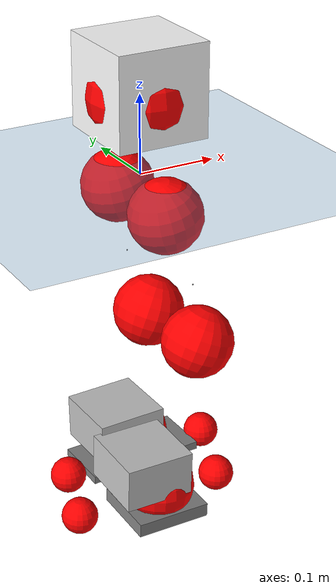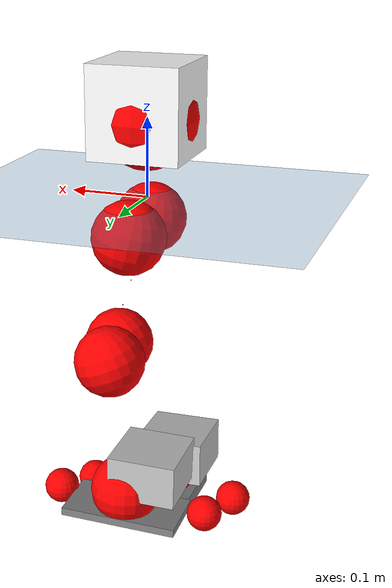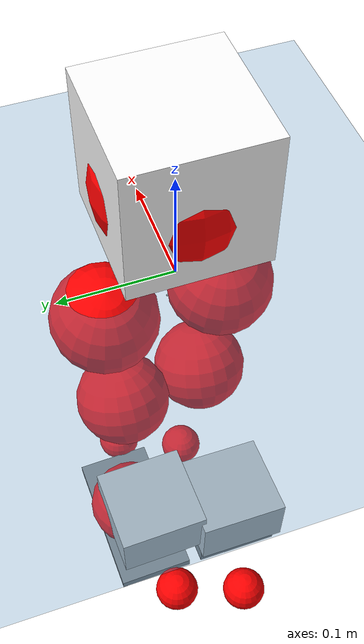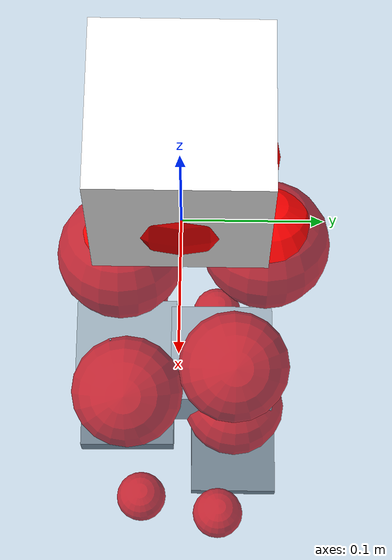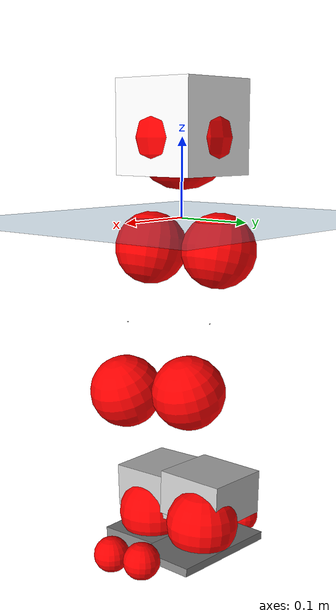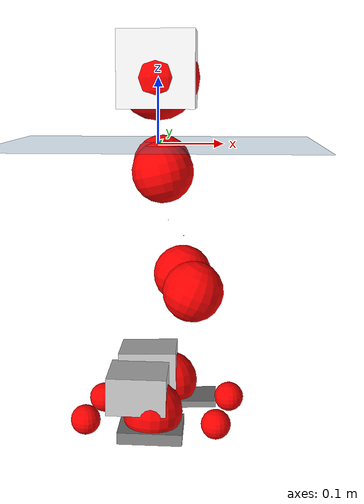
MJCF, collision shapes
<mujoco model="pi_12dof_release_v1">
  <compiler angle="radian" assetdir="assets" balanceinertia="true" inertiafromgeom="false"/>

  <option timestep="0.005" density="1.2" viscosity="2e-05"/>

  <size nkey="1"/>

  <visual>
    <quality shadowsize="8192"/>
    <map shadowclip="0.5"/>
  </visual>

  <default>
    <default class="/">
      <joint armature="0.01" damping="0.01" frictionloss="0.01"/>
      <geom contype="0" conaffinity="0" group="1" solref="-1000 -80"/>
      <site size="0.01 0.005 0.005" group="5"/>
      <general forcelimited="true" biastype="affine" gainprm="20" biasprm="0 -20 -0.5"/>
      <default class="foot">
        <geom size="0.0845 0.036 0.005" type="box" condim="6" group="4" priority="1" friction="0.9 0.2 0.2" solimp="0.015 1 0.005"/>
      </default>
      <default class="reward_collision_sphere">
        <geom group="5" rgba="1 0 0 1"/>
      </default>
    </default>
  </default>

  <asset>
    <texture type="skybox" colorspace="auto" name="//unnamed_texture_0" builtin="gradient" rgb1="0.95 0.95 0.95" rgb2="0.95 0.95 0.95" width="100" height="600"/>
    <texture type="2d" colorspace="auto" name="texplane" builtin="checker" rgb1="0.345 0.575 0.748" rgb2="0.345 0.575 0.748" markrgb="1 1 1" width="512" height="512"/>
    <material name="MatPlane" class="/" texture="texplane" texuniform="true" texrepeat="2 2" specular="0.9"/>
    <mesh name="baselink_1" class="/" file="baselink_1.STL"/>
    <mesh name="r_hip_pitch_link" class="/" file="r_hip_pitch_link.STL"/>
    <mesh name="r_hip_roll_link" class="/" file="r_hip_roll_link.STL"/>
    <mesh name="r_thigh_link" class="/" file="r_thigh_link.STL"/>
    <mesh name="r_calf_link" class="/" file="r_calf_link.STL"/>
    <mesh name="r_ankle_pitch_link" class="/" file="r_ankle_pitch_link.STL"/>
    <mesh name="r_ankle_roll_link" class="/" file="r_ankle_roll_link.STL"/>
    <mesh name="l_hip_pitch_link" class="/" file="l_hip_pitch_link.STL"/>
    <mesh name="l_hip_roll_link" class="/" file="l_hip_roll_link.STL"/>
    <mesh name="l_thigh_link" class="/" file="l_thigh_link.STL"/>
    <mesh name="l_calf_link" class="/" file="l_calf_link.STL"/>
    <mesh name="l_ankle_pitch_link" class="/" file="l_ankle_pitch_link.STL"/>
    <mesh name="l_ankle_roll_link" class="/" file="l_ankle_roll_link.STL"/>
  </asset>

  <worldbody>
    <geom name="floor" class="/" size="100 100 0.125" type="plane" group="0" material="MatPlane"/>
    <light name="toplight_shadow" class="/" pos="0 0 5" dir="0.0990148 0.0990148 -0.990148" type="directional" ambient="0.04 0.04 0.04" diffuse="0.55 0.55 0.55" specular="0.12 0.12 0.12"/>
    <light name="toplight_fill" class="/" pos="0 0 5" dir="0.0990148 0.0990148 -0.990148" type="directional" castshadow="false" ambient="0.04 0.04 0.04" diffuse="0.3 0.3 0.3" specular="0.08 0.08 0.08"/>
    <body name="trunk" pos="-0.000245169 0.000598042 0.0119663" quat="0.999999 -0.000844809 -0.000256187 0.000496482">
      <inertial pos="0.00074331 -0.0158573 0.0372057" quat="0.696657 0.00905199 0.011662 0.717252" mass="3.54917" diaginertia="0.0706715 0.00210236 0.0142583"/>
      <joint name="//unnamed_joint_0" type="free"/>
      <geom name="//unnamed_geom_1" class="/" type="mesh" density="0" rgba="1 1 1 1" mesh="baselink_1"/>
      <geom name="//unnamed_geom_2" class="/" size="0.0582479 0.0582479 0.0582479" pos="0 0 0.099602" type="box" rgba="1 1 1 1"/>
      <geom name="//unnamed_geom_3" class="reward_collision_sphere" size="0.0640727" pos="0 0 0.0871518"/>
      <site name="imu" class="/" pos="-0.0369609 0.0496938 -0.0388407" size="0.0116496"/>
      <camera name="track" class="/" pos="0 -1.475 0" quat="0.707107 0.707107 0 0" mode="trackcom"/>
      <camera name="ego_camera" class="/" pos="0.113426 0 0.224105" quat="-0.5 -0.5 0.5 0.5"/>
      <body name="r_hip_pitch_link" pos="0.00394867 -0.00631503 -0.0443592" quat="0.992328 0.00131518 -0.123602 -0.00259364">
        <inertial pos="0.0155376 -0.0386628 0.00930296" quat="-0.0321619 0.712273 -0.0427133 0.699863" mass="0.682828" diaginertia="0.000938075 2.59864e-05 0.000234832"/>
        <joint name="r_hip_pitch_joint" class="/" pos="0 0 0" axis="0.000103995 -0.996923 -0.078391" range="-1.64997 1.48007" armature="0.0175578" damping="0.0564823" frictionloss="0.0189474"/>
        <geom name="//unnamed_geom_4" class="/" type="mesh" density="0" rgba="0.75294 0.75294 0.75294 1" mesh="r_hip_pitch_link"/>
        <geom name="//unnamed_geom_5" class="/" size="0.000582479 0.000582479 0.000582479" type="box" rgba="0.75294 0.75294 0.75294 1"/>
        <body name="r_hip_roll_link" pos="0.00443659 -0.0379198 -0.00856006" quat="1 2.01e-05 5.28931e-05 -3.58778e-05">
          <inertial pos="2.07221e-05 0.00107766 -0.0659217" quat="0.700813 -0.0836164 -0.074911 0.704455" mass="0.671639" diaginertia="0.00252083 6.01622e-05 0.000548242"/>
          <joint name="r_hip_roll_joint" class="/" pos="0 0 0" axis="-0.998033 0.0618648 0.010141" stiffness="0.0412849" range="-0.0974853 0.560408" armature="0.014288" damping="0.0897802" frictionloss="0.00572649"/>
          <geom name="//unnamed_geom_6" class="/" type="mesh" density="0" rgba="0.75294 0.75294 0.75294 1" mesh="r_hip_roll_link"/>
          <geom name="//unnamed_geom_7" class="/" size="0.000582479 0.000582479 0.000582479" type="box" rgba="0.75294 0.75294 0.75294 1"/>
          <geom name="//unnamed_geom_8" class="reward_collision_sphere" size="0.0465983"/>
          <body name="r_thigh_link" pos="0.00840542 -0.0117792 -0.0988966" quat="0.999971 0.00604967 0.00453523 0.00105771">
            <inertial pos="0.00295574 0.00154725 -0.0589333" quat="0.737437 0.675415 0.000127122 -0.00122656" mass="0.225497" diaginertia="0.000960891 2.11866e-05 0.000192837"/>
            <joint name="r_thigh_joint" class="/" pos="0 0 0" axis="-0.00726605 -0.00158584 -0.999972" range="-0.304773 0.829799" armature="0.00373718" damping="0" frictionloss="0.0108346"/>
            <geom name="//unnamed_geom_9" class="/" type="mesh" density="0" rgba="0.75294 0.75294 0.75294 1" mesh="r_thigh_link"/>
            <geom name="//unnamed_geom_10" class="/" size="0.000582479 0.000582479 0.000582479" type="box" rgba="0.75294 0.75294 0.75294 1"/>
            <body name="r_calf_link" pos="-0.00722449 0.00841778 -0.0887325" quat="0.948206 0.00478343 0.317591 0.00435556">
              <inertial pos="0.000365775 -0.0051831 -0.0820782" quat="0.999968 -0.00687894 0.00108383 0.00402942" mass="1.39365" diaginertia="0.0342039 0.00100911 0.000503503"/>
              <joint name="r_calf_joint" class="/" pos="0 0 0" axis="-0.0152838 -0.996318 -0.0843588" range="-1.47947 0.647088" armature="0.0124566" damping="0.0173188" frictionloss="0.0154625"/>
              <geom name="//unnamed_geom_11" class="/" type="mesh" density="0" rgba="0.75294 0.75294 0.75294 1" mesh="r_calf_link"/>
              <geom name="//unnamed_geom_12" class="/" size="0.000582479 0.000582479 0.000582479" type="box" rgba="0.75294 0.75294 0.75294 1"/>
              <geom name="//unnamed_geom_13" class="reward_collision_sphere" size="0.0465983"/>
              <body name="r_ankle_pitch_link" pos="-0.016627 -0.0100886 -0.172357" quat="0.980593 0.00104418 -0.196046 -0.00165061">
                <inertial pos="0.00531181 0.00675289 0.000239346" quat="0.00511183 0.706124 -0.00217356 0.708067" mass="0.244753" diaginertia="0.00228446 4.22058e-05 0.000264267"/>
                <joint name="r_ankle_pitch_joint" class="/" pos="0 0 0" axis="0.0224294 -0.998967 -0.0395173" stiffness="0.0420269" range="-1.07625 0.330159" armature="0.010365" damping="0" frictionloss="0.0035518"/>
                <geom name="//unnamed_geom_14" class="/" type="mesh" density="0" rgba="0.75294 0.75294 0.75294 1" mesh="r_ankle_pitch_link"/>
                <geom name="//unnamed_geom_15" class="/" size="0.0454334 0.0465983 0.0291239" type="box" rgba="0.75294 0.75294 0.75294 1"/>
                <body name="r_ankle_roll_link" pos="0.0982398 -0.003364 -0.00955456" quat="0.999997 -0.00196811 0.00133948 0.00090055">
                  <inertial pos="-0.0281101 0.00587112 -0.0344332" quat="0.585944 0.422085 0.417031 0.551905" mass="0.992639" diaginertia="0.00773228 0.00022865 0.000860573"/>
                  <joint name="r_ankle_roll_joint" class="/" pos="0 0 0" axis="-0.999978 0.000898631 0.00654572" range="-0.230285 0.248058" armature="0.0121579" damping="0" frictionloss="0.001839"/>
                  <geom name="//unnamed_geom_16" class="/" type="mesh" density="0" rgba="0.75294 0.75294 0.75294 1" mesh="r_ankle_roll_link"/>
                  <geom name="//unnamed_geom_17" class="/" type="mesh" rgba="0.75294 0.75294 0.75294 1" mesh="r_ankle_roll_link"/>
                  <geom name="right_foot" class="foot" size="0.0493279 0.0449011 0.00899428" pos="-0.0771296 0 -0.0547811"/>
                  <geom name="//unnamed_geom_19" class="reward_collision_sphere" size="0.0465983" pos="-0.0756173 0 -0.0249005"/>
                  <geom name="//unnamed_geom_20" class="reward_collision_sphere" size="0.0232992" pos="0.0226852 0.01475 -0.049801"/>
                  <geom name="//unnamed_geom_21" class="reward_collision_sphere" size="0.0232992" pos="-0.181481 0.01475 -0.049801"/>
                  <site name="right_foot" class="foot" pos="-0.0771296 0 -0.0547811" size="0.0116496"/>
                </body>
              </body>
            </body>
          </body>
        </body>
      </body>
      <body name="l_hip_pitch_link" pos="0.00550282 0.00498195 -0.0451417" quat="0.992219 -0.000729473 -0.124492 -0.00175141">
        <inertial pos="0.010593 0.0540035 -0.00508403" quat="-0.0527528 0.651796 -0.0189508 0.75632" mass="0.755627" diaginertia="0.000928976 1.98491e-05 0.000336215"/>
        <joint name="l_hip_pitch_joint" class="/" pos="0 0 0" axis="-0.00182758 0.999996 0.00221983" stiffness="0.00477946" range="-1.50725 2.05337" armature="0.00495215" damping="0" frictionloss="0.0196172"/>
        <geom name="//unnamed_geom_22" class="/" type="mesh" density="0" rgba="0.75294 0.75294 0.75294 1" mesh="l_hip_pitch_link"/>
        <geom name="//unnamed_geom_23" class="/" size="0.000582479 0.000582479 0.000582479" type="box" rgba="0.75294 0.75294 0.75294 1"/>
        <body name="l_hip_roll_link" pos="-0.00389597 0.0559486 -0.00214741" quat="0.999988 0.00195703 -0.00202324 0.00395832">
          <inertial pos="0.00419127 0.0120109 -0.0777307" quat="0.72084 -0.0969201 -0.0690589 0.682808" mass="0.578602" diaginertia="0.00225962 5.50314e-05 0.000274667"/>
          <joint name="l_hip_roll_joint" class="/" pos="0 0 0" axis="-0.999032 -0.0384709 0.0213364" stiffness="0.0325517" range="-0.842531 0.424289" armature="0.00750455" damping="0.00352148" frictionloss="0.00960301"/>
          <geom name="//unnamed_geom_24" class="/" type="mesh" density="0" rgba="0.75294 0.75294 0.75294 1" mesh="l_hip_roll_link"/>
          <geom name="//unnamed_geom_25" class="/" size="0.000582479 0.000582479 0.000582479" type="box" rgba="0.75294 0.75294 0.75294 1"/>
          <geom name="//unnamed_geom_26" class="reward_collision_sphere" size="0.0465983"/>
          <body name="l_thigh_link" pos="-0.0127068 -0.00513136 -0.0896218" quat="0.999977 -0.00223989 -0.00483177 0.004168">
            <inertial pos="-0.0128384 0.0064093 -0.0476623" quat="0.67503 0.737789 0.00159564 6.05049e-05" mass="0.163742" diaginertia="0.000835641 1.30486e-05 0.000104931"/>
            <joint name="l_thigh_joint" class="/" pos="0 0 0" axis="0.00518533 -0.0303846 -0.999525" range="-0.729174 0.57309" armature="0.0170802" damping="0" frictionloss="0.0186436"/>
            <geom name="//unnamed_geom_27" class="/" type="mesh" density="0" rgba="0.75294 0.75294 0.75294 1" mesh="l_thigh_link"/>
            <geom name="//unnamed_geom_28" class="/" size="0.000582479 0.000582479 0.000582479" type="box" rgba="0.75294 0.75294 0.75294 1"/>
            <body name="l_calf_link" pos="0.000717641 -0.0130069 -0.089065" quat="0.949369 -0.0045725 0.314129 0.000221149">
              <inertial pos="-0.00514972 -0.0064113 -0.0781246" quat="0.995956 -0.00321487 -0.00236825 0.0897496" mass="1.58323" diaginertia="0.0274689 0.000971763 0.000593325"/>
              <joint name="l_calf_joint" class="/" pos="0 0 0" axis="0.00627211 0.999979 -0.00156858" range="-0.76469 1.83509" armature="0.0126682" damping="0" frictionloss="0.0180759"/>
              <geom name="//unnamed_geom_29" class="/" type="mesh" density="0" rgba="0.75294 0.75294 0.75294 1" mesh="l_calf_link"/>
              <geom name="//unnamed_geom_30" class="/" size="0.000582479 0.000582479 0.000582479" type="box" rgba="0.75294 0.75294 0.75294 1"/>
              <geom name="//unnamed_geom_31" class="reward_collision_sphere" size="0.0465983"/>
              <body name="l_ankle_pitch_link" pos="0.00425825 -0.0055038 -0.158453" quat="0.980347 0.00127519 -0.197278 0.00017498">
                <inertial pos="0.00901292 -0.0179734 -0.0101774" quat="0.0273866 0.689613 0.0554329 0.721534" mass="0.339399" diaginertia="0.00306068 6.01429e-05 0.000454839"/>
                <joint name="l_ankle_pitch_joint" class="/" pos="0 0 0" axis="-0.0140012 0.996985 0.0763252" stiffness="0.00223728" range="-0.513231 1.28895" armature="0.0106732" damping="0.0671653" frictionloss="0.0149936"/>
                <geom name="//unnamed_geom_32" class="/" type="mesh" density="0" rgba="0.75294 0.75294 0.75294 1" mesh="l_ankle_pitch_link"/>
                <geom name="//unnamed_geom_33" class="/" size="0.0454334 0.0465983 0.0291239" type="box" rgba="0.75294 0.75294 0.75294 1"/>
                <body name="l_ankle_roll_link" pos="0.106353 0.0129198 -0.00540535" quat="0.999981 -0.00507575 -0.00279228 -0.00203384">
                  <inertial pos="-0.045365 0.00142149 -0.0175854" quat="0.493878 0.448088 0.440142 0.601313" mass="1.08729" diaginertia="0.00936737 0.000272884 0.000740738"/>
                  <joint name="l_ankle_roll_joint" class="/" pos="0 0 0" axis="-0.996272 0.0838474 -0.0202752" stiffness="0.0373554" range="-0.157062 0.506193" armature="0.0122069" damping="0" frictionloss="0.0216352"/>
                  <geom name="//unnamed_geom_34" class="/" type="mesh" density="0" rgba="0.75294 0.75294 0.75294 1" mesh="l_ankle_roll_link"/>
                  <geom name="//unnamed_geom_35" class="/" type="mesh" rgba="0.75294 0.75294 0.75294 1" mesh="l_ankle_roll_link"/>
                  <geom name="left_foot" class="foot" size="0.0781803 0.0394998 0.00529057" pos="-0.0771296 0 -0.0547811"/>
                  <geom name="//unnamed_geom_37" class="reward_collision_sphere" size="0.0465983" pos="-0.0756173 0 -0.0249005"/>
                  <geom name="//unnamed_geom_38" class="reward_collision_sphere" size="0.0232992" pos="0.0226852 -0.01475 -0.049801"/>
                  <geom name="//unnamed_geom_39" class="reward_collision_sphere" size="0.0232992" pos="-0.181481 -0.01475 -0.049801"/>
                  <site name="left_foot" class="foot" pos="-0.0771296 0 -0.0547811" size="0.0116496"/>
                </body>
              </body>
            </body>
          </body>
        </body>
      </body>
    </body>
  </worldbody>

  <contact>
    <pair class="/" geom1="floor" geom2="right_foot" name="//unnamed_contact_1"/>
    <pair class="/" geom1="floor" geom2="left_foot" name="//unnamed_contact_0"/>
  </contact>

  <actuator>
    <general name="r_hip_pitch_joint" class="/" joint="r_hip_pitch_joint" forcerange="-35.5207 35.5207" gainprm="28.1181" biasprm="0 -28.1181 -0.512951"/>
    <general name="r_hip_roll_joint" class="/" joint="r_hip_roll_joint" forcerange="-24.5503 24.5503" gainprm="28.1181" biasprm="0 -28.1181 -0.512951"/>
    <general name="r_thigh_joint" class="/" joint="r_thigh_joint" forcerange="-34.3535 34.3535" gainprm="28.1181" biasprm="0 -28.1181 -0.512951"/>
    <general name="r_calf_joint" class="/" joint="r_calf_joint" forcerange="-17.732 17.732" gainprm="28.1181" biasprm="0 -28.1181 -0.512951"/>
    <general name="r_ankle_pitch_joint" class="/" joint="r_ankle_pitch_joint" forcerange="-14.2916 14.2916" gainprm="28.1181" biasprm="0 -28.1181 -0.512951"/>
    <general name="r_ankle_roll_joint" class="/" joint="r_ankle_roll_joint" forcerange="-10.725 10.725" gainprm="28.1181" biasprm="0 -28.1181 -0.512951"/>
    <general name="l_hip_pitch_joint" class="/" joint="l_hip_pitch_joint" forcerange="-33.706 33.706" gainprm="28.1181" biasprm="0 -28.1181 -0.512951"/>
    <general name="l_hip_roll_joint" class="/" joint="l_hip_roll_joint" forcerange="-40.0981 40.0981" gainprm="28.1181" biasprm="0 -28.1181 -0.512951"/>
    <general name="l_thigh_joint" class="/" joint="l_thigh_joint" forcerange="-18.8578 18.8578" gainprm="28.1181" biasprm="0 -28.1181 -0.512951"/>
    <general name="l_calf_joint" class="/" joint="l_calf_joint" forcerange="-30.6908 30.6908" gainprm="28.1181" biasprm="0 -28.1181 -0.512951"/>
    <general name="l_ankle_pitch_joint" class="/" joint="l_ankle_pitch_joint" forcerange="-17.6123 17.6123" gainprm="28.1181" biasprm="0 -28.1181 -0.512951"/>
    <general name="l_ankle_roll_joint" class="/" joint="l_ankle_roll_joint" forcerange="-32.6261 32.6261" gainprm="28.1181" biasprm="0 -28.1181 -0.512951"/>
  </actuator>

  <sensor>
    <gyro site="imu" name="imu_angular_velocity"/>
    <velocimeter site="imu" name="imu_linear_velocity"/>
    <framelinvel objtype="site" objname="left_foot" name="left_foot_global_linear_velocity"/>
    <framelinvel objtype="site" objname="right_foot" name="right_foot_global_linear_velocity"/>
  </sensor>

  <keyframe>
    <key name="home" qpos="0 0 0.291 1 0 0 0 0.4 0 0 -0.8 0.4 0 -0.4 0 0 0.8 -0.4 0"/>
  </keyframe>
</mujoco>
